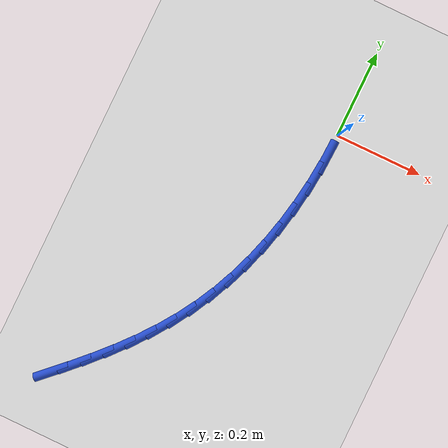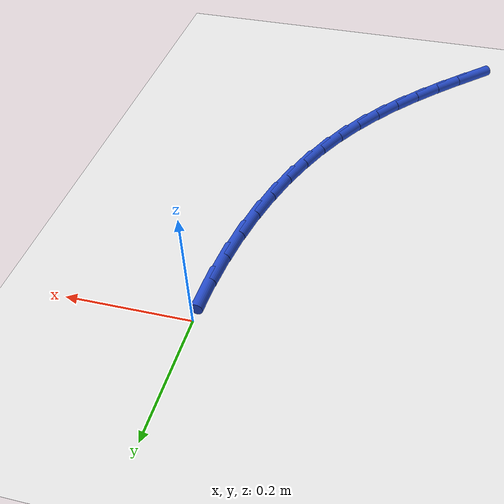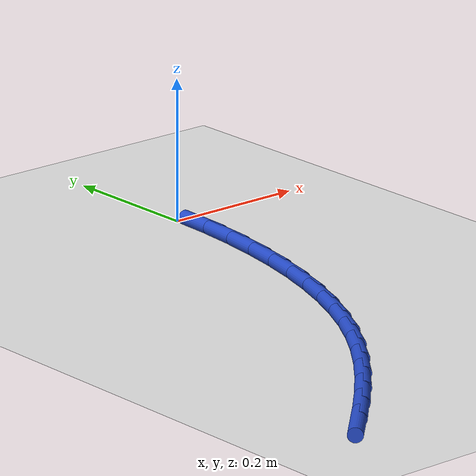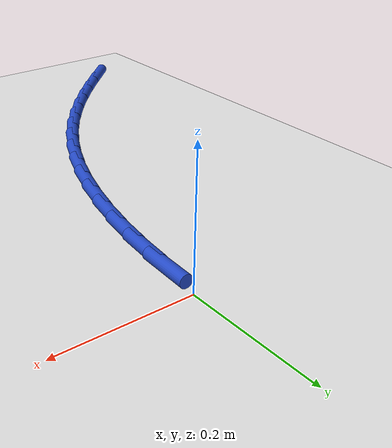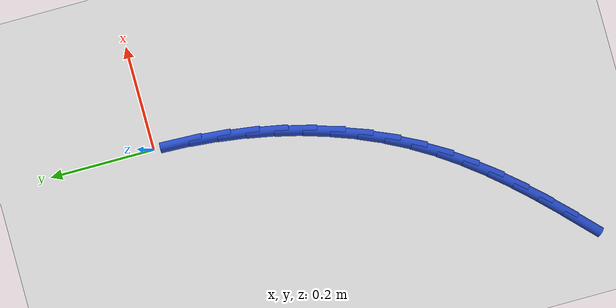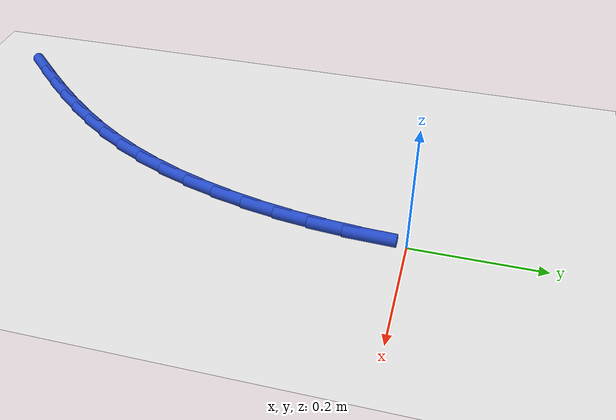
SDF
<sdf version="1.6">
 <world name="default">
  <model name="ground_plane">
   <static>1</static>
   <link name="link">
    <collision name="collision">
     <geometry><plane><normal>0 0 1</normal><size>100 100</size></plane></geometry>
     <surface><friction><ode><mu>100</mu><mu2>50</mu2></ode></friction></surface>
    </collision>
    <visual name="visual">
     <cast_shadows>0</cast_shadows>
     <geometry><plane><normal>0 0 1</normal><size>100 100</size></plane></geometry>
     <material>
      <script><uri>file://media/materials/scripts/gazebo.material</uri><name>Gazebo/WhiteGlow</name></script>
     </material>
    </visual>
   </link>
  </model>
  <model name="line">
   <link name="link_114">
    <pose>-0.34125573818231786 -0.7393722367663134 0.01 0 1.57 0.7703872885384255</pose>
    <collision name="collision">
     <geometry><cylinder><radius>0.01</radius><length>0.08</length></cylinder></geometry>
    </collision>
    <visual name="visual">
     <material>
      <script><name>Gazebo/Blue</name><uri>file://media/materials/scripts/gazebo.material</uri></script>
     </material>
     <geometry><cylinder><radius>0.01</radius><length>0.08</length></cylinder></geometry>
    </visual>
   </link>
   <link name="link_115">
    <pose>-0.30247459596474 -0.701738238817025 0.01 0 1.57 0.7962395356237224</pose>
    <collision name="collision">
     <geometry><cylinder><radius>0.01</radius><length>0.08</length></cylinder></geometry>
    </collision>
    <visual name="visual">
     <material>
      <script><name>Gazebo/Blue</name><uri>file://media/materials/scripts/gazebo.material</uri></script>
     </material>
     <geometry><cylinder><radius>0.01</radius><length>0.08</length></cylinder></geometry>
    </visual>
   </link>
   <link name="link_116">
    <pose>-0.2654083661945057 -0.6638594705927882 0.01 0 1.57 0.8295777756864112</pose>
    <collision name="collision">
     <geometry><cylinder><radius>0.01</radius><length>0.08</length></cylinder></geometry>
    </collision>
    <visual name="visual">
     <material>
      <script><name>Gazebo/Blue</name><uri>file://media/materials/scripts/gazebo.material</uri></script>
     </material>
     <geometry><cylinder><radius>0.01</radius><length>0.08</length></cylinder></geometry>
    </visual>
   </link>
   <link name="link_117">
    <pose>-0.23023489116517104 -0.6254322271380174 0.01 0 1.57 0.8705242089137398</pose>
    <collision name="collision">
     <geometry><cylinder><radius>0.01</radius><length>0.08</length></cylinder></geometry>
    </collision>
    <visual name="visual">
     <material>
      <script><name>Gazebo/Blue</name><uri>file://media/materials/scripts/gazebo.material</uri></script>
     </material>
     <geometry><cylinder><radius>0.01</radius><length>0.08</length></cylinder></geometry>
    </visual>
   </link>
   <link name="link_118">
    <pose>-0.19713201317029228 -0.5861528034971274 0.01 0 1.57 0.9189910812211347</pose>
    <collision name="collision">
     <geometry><cylinder><radius>0.01</radius><length>0.08</length></cylinder></geometry>
    </collision>
    <visual name="visual">
     <material>
      <script><name>Gazebo/Blue</name><uri>file://media/materials/scripts/gazebo.material</uri></script>
     </material>
     <geometry><cylinder><radius>0.01</radius><length>0.08</length></cylinder></geometry>
    </visual>
   </link>
   <link name="link_119">
    <pose>-0.16627757450342687 -0.5457174947145343 0.01 0 1.57 0.9746057551429403</pose>
    <collision name="collision">
     <geometry><cylinder><radius>0.01</radius><length>0.08</length></cylinder></geometry>
    </collision>
    <visual name="visual">
     <material>
      <script><name>Gazebo/Blue</name><uri>file://media/materials/scripts/gazebo.material</uri></script>
     </material>
     <geometry><cylinder><radius>0.01</radius><length>0.08</length></cylinder></geometry>
    </visual>
   </link>
   <link name="link_120">
    <pose>-0.13784941745813112 -0.5038225958346532 0.01 0 1.57 1.03664516360489</pose>
    <collision name="collision">
     <geometry><cylinder><radius>0.01</radius><length>0.08</length></cylinder></geometry>
    </collision>
    <visual name="visual">
     <material>
      <script><name>Gazebo/Blue</name><uri>file://media/materials/scripts/gazebo.material</uri></script>
     </material>
     <geometry><cylinder><radius>0.01</radius><length>0.08</length></cylinder></geometry>
    </visual>
   </link>
   <link name="link_121">
    <pose>-0.11202534715428167 -0.460164490388019 0.01 0 1.57 1.1022312996939636</pose>
    <collision name="collision">
     <geometry><cylinder><radius>0.01</radius><length>0.08</length></cylinder></geometry>
    </collision>
    <visual name="visual">
     <material>
      <script><name>Gazebo/Blue</name><uri>file://media/materials/scripts/gazebo.material</uri></script>
     </material>
     <geometry><cylinder><radius>0.01</radius><length>0.08</length></cylinder></geometry>
    </visual>
   </link>
   <link name="link_122">
    <pose>-0.0889368879847154 -0.4145497259238839 0.01 0 1.57 1.1654317491823891</pose>
    <collision name="collision">
     <geometry><cylinder><radius>0.01</radius><length>0.08</length></cylinder></geometry>
    </collision>
    <visual name="visual">
     <material>
      <script><name>Gazebo/Blue</name><uri>file://media/materials/scripts/gazebo.material</uri></script>
     </material>
     <geometry><cylinder><radius>0.01</radius><length>0.08</length></cylinder></geometry>
    </visual>
   </link>
   <link name="link_123">
    <pose>-0.06857899428412753 -0.36710993361493155 0.01 0 1.57 1.2254035501334004</pose>
    <collision name="collision">
     <geometry><cylinder><radius>0.01</radius><length>0.08</length></cylinder></geometry>
    </collision>
    <visual name="visual">
     <material>
      <script><name>Gazebo/Blue</name><uri>file://media/materials/scripts/gazebo.material</uri></script>
     </material>
     <geometry><cylinder><radius>0.01</radius><length>0.08</length></cylinder></geometry>
    </visual>
   </link>
   <link name="link_124">
    <pose>-0.050921552105954164 -0.3180364157492895 0.01 0 1.57 1.2823875399817264</pose>
    <collision name="collision">
     <geometry><cylinder><radius>0.01</radius><length>0.08</length></cylinder></geometry>
    </collision>
    <visual name="visual">
     <material>
      <script><name>Gazebo/Blue</name><uri>file://media/materials/scripts/gazebo.material</uri></script>
     </material>
     <geometry><cylinder><radius>0.01</radius><length>0.08</length></cylinder></geometry>
    </visual>
   </link>
   <link name="link_125">
    <pose>-0.035934447503630486 -0.267520474615083 0.01 0 1.57 1.3366621525949942</pose>
    <collision name="collision">
     <geometry><cylinder><radius>0.01</radius><length>0.08</length></cylinder></geometry>
    </collision>
    <visual name="visual">
     <material>
      <script><name>Gazebo/Blue</name><uri>file://media/materials/scripts/gazebo.material</uri></script>
     </material>
     <geometry><cylinder><radius>0.01</radius><length>0.08</length></cylinder></geometry>
    </visual>
   </link>
   <link name="link_126">
    <pose>-0.023587566530591842 -0.21575341250043767 0.01 0 1.57 1.388527252440922</pose>
    <collision name="collision">
     <geometry><cylinder><radius>0.01</radius><length>0.08</length></cylinder></geometry>
    </collision>
    <visual name="visual">
     <material>
      <script><name>Gazebo/Blue</name><uri>file://media/materials/scripts/gazebo.material</uri></script>
     </material>
     <geometry><cylinder><radius>0.01</radius><length>0.08</length></cylinder></geometry>
    </visual>
   </link>
   <link name="link_127">
    <pose>-0.013850795240274083 -0.162926531693481 0.01 0 1.57 1.4382925668338573</pose>
    <collision name="collision">
     <geometry><cylinder><radius>0.01</radius><length>0.08</length></cylinder></geometry>
    </collision>
    <visual name="visual">
     <material>
      <script><name>Gazebo/Blue</name><uri>file://media/materials/scripts/gazebo.material</uri></script>
     </material>
     <geometry><cylinder><radius>0.01</radius><length>0.08</length></cylinder></geometry>
    </visual>
   </link>
   <link name="link_128">
    <pose>-0.006694019686112516 -0.10923113448233844 0.01 0 1.57 1.4862700037186785</pose>
    <collision name="collision">
     <geometry><cylinder><radius>0.01</radius><length>0.08</length></cylinder></geometry>
    </collision>
    <visual name="visual">
     <material>
      <script><name>Gazebo/Blue</name><uri>file://media/materials/scripts/gazebo.material</uri></script>
     </material>
     <geometry><cylinder><radius>0.01</radius><length>0.08</length></cylinder></geometry>
    </visual>
   </link>
   <link name="link_129">
    <pose>-0.0020871259215426456 -0.054858523155136174 0.01 0 1.57 1.532769058487519</pose>
    <collision name="collision">
     <geometry><cylinder><radius>0.01</radius><length>0.08</length></cylinder></geometry>
    </collision>
    <visual name="visual">
     <material>
      <script><name>Gazebo/Blue</name><uri>file://media/materials/scripts/gazebo.material</uri></script>
     </material>
     <geometry><cylinder><radius>0.01</radius><length>0.08</length></cylinder></geometry>
    </visual>
   </link>
  </model>
 </world>
</sdf>
